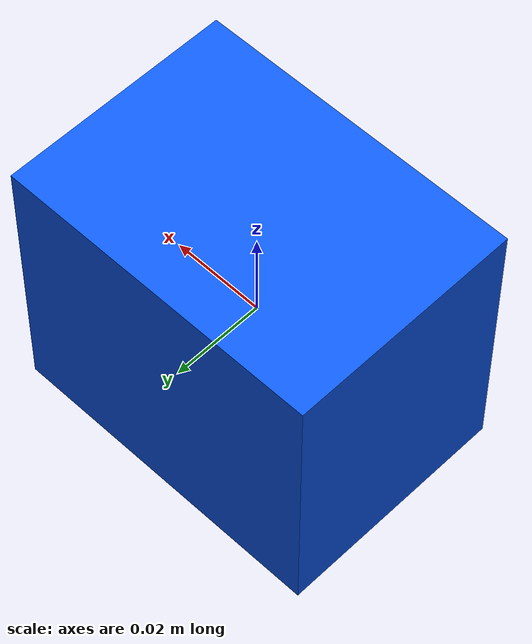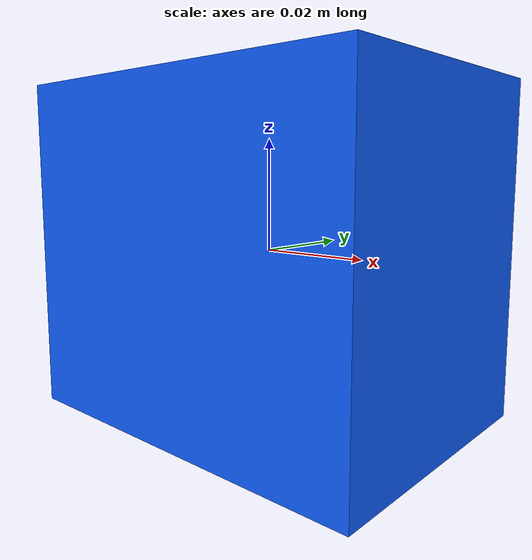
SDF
<?xml version="1.0"?>
<sdf version="1.9">
  <model name="room315_payload_box">
    <static>true</static>
    <link name="base_link">
      <visual name="payload_visual">
        <geometry>
          <box>
            <size>0.07 0.05 0.06</size>
          </box>
        </geometry>
        <material>
          <ambient>0.05 0.35 0.95 1</ambient>
          <diffuse>0.05 0.35 0.95 1</diffuse>
          <specular>0.2 0.2 0.2 1</specular>
        </material>
      </visual>
    </link>
  </model>
</sdf>
